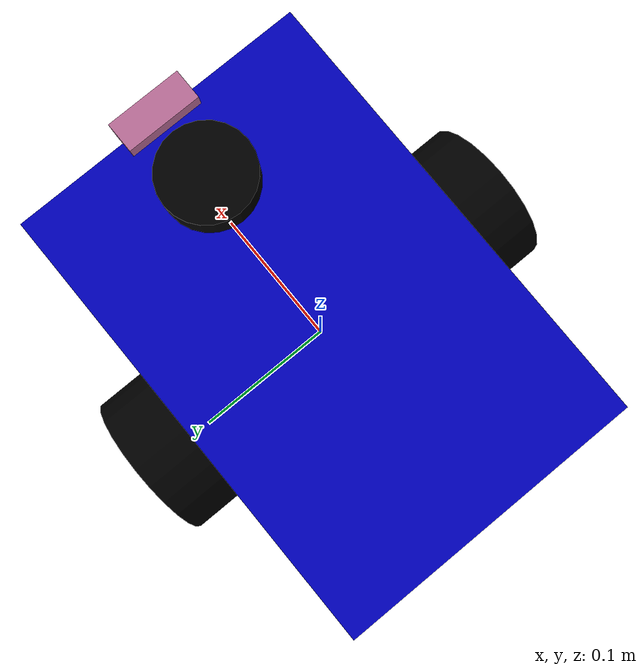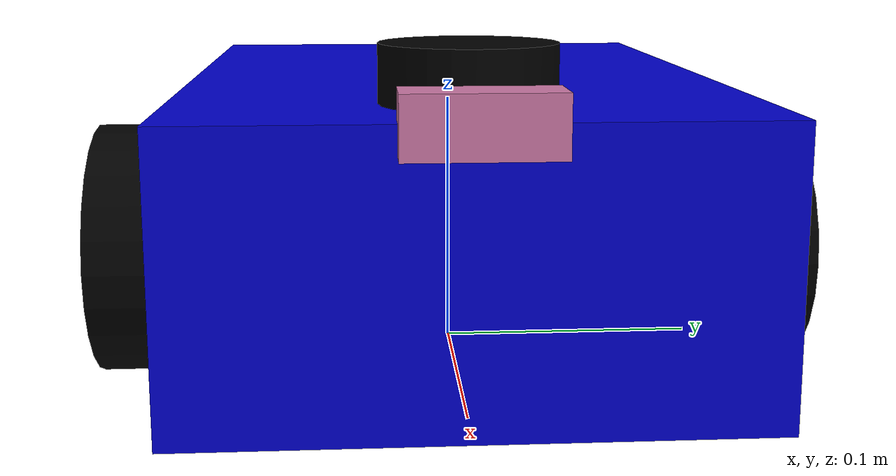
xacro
<?xml version="1.0"?>
<robot name="courier_robot" xmlns:xacro="http://www.ros.org/wiki/xacro">

  <material name="blue"><color rgba="0 0 0.8 1"/></material>
<material name="black"><color rgba="0 0 0 1"/></material>
<material name="white"><color rgba="1 1 1 1"/></material>

  <link name="base_link">
<visual>
<geometry><box size="0.3 0.2 0.1"/></geometry>
<material name="blue"/>
</visual>
<collision>
<geometry><box size="0.3 0.2 0.1"/></geometry>
</collision>
<inertial>
<mass value="2.0"/>
<inertia ixx="0.01" ixy="0" ixz="0" iyy="0.01" iyz="0" izz="0.01"/>
</inertial>
</link>

  <link name="base_footprint"/>
<joint name="base_joint" type="fixed">
<parent link="base_footprint"/>
<child link="base_link"/>
<origin xyz="0 0 0.06" rpy="0 0 0"/> </joint>

  <link name="left_wheel">
<visual>
<geometry><cylinder radius="0.05" length="0.04"/></geometry>
<material name="black"/>
</visual>
<collision>
<geometry><cylinder radius="0.05" length="0.04"/></geometry>
</collision>
<inertial>
<mass value="0.2"/>
<inertia ixx="0.0001" ixy="0" ixz="0" iyy="0.0001" iyz="0" izz="0.0001"/>
</inertial>
</link>
<joint name="left_wheel_joint" type="continuous">
<parent link="base_link"/>
<child link="left_wheel"/>
<origin xyz="0 0.12 -0.02" rpy="-1.5707 0 0"/>
<axis xyz="0 0 1"/>
</joint>

  <link name="right_wheel">
<visual>
<geometry><cylinder radius="0.05" length="0.04"/></geometry>
<material name="black"/>
</visual>
<collision>
<geometry><cylinder radius="0.05" length="0.04"/></geometry>
</collision>
<inertial>
<mass value="0.2"/>
<inertia ixx="0.0001" ixy="0" ixz="0" iyy="0.0001" iyz="0" izz="0.0001"/>
</inertial>
</link>
<joint name="right_wheel_joint" type="continuous">
<parent link="base_link"/>
<child link="right_wheel"/>
<origin xyz="0 -0.12 -0.02" rpy="-1.5707 0 0"/>
<axis xyz="0 0 1"/>
</joint>

  <link name="caster_wheel">
<visual><geometry><sphere radius="0.03"/></geometry></visual>
<collision><geometry><sphere radius="0.03"/></geometry></collision>
<inertial>
<mass value="0.1"/>
<inertia ixx="0.0001" ixy="0" ixz="0" iyy="0.0001" iyz="0" izz="0.0001"/>
</inertial>
</link>
<joint name="caster_joint" type="fixed">
<parent link="base_link"/>
<child link="caster_wheel"/>
<origin xyz="-0.1 0 -0.04" rpy="0 0 0"/>
<axis xyz="0 1 0"/>
</joint>

  <link name="lidar_link">
<visual><geometry><cylinder radius="0.03" length="0.02"/></geometry><material name="black"/></visual>
</link>
<joint name="lidar_joint" type="fixed">
<parent link="base_link"/>
<child link="lidar_link"/>
<origin xyz="0.10 0 0.06" rpy="0 0 0"/>
</joint>

  <gazebo reference="lidar_link">
<sensor name="lidar" type="gpu_lidar">
<pose>0 0 0 0 0 0</pose>
<always_on>true</always_on>
<visualize>true</visualize>
<update_rate>10</update_rate>
<ray>
<scan>
<horizontal>
<samples>360</samples>
<resolution>1</resolution>
<min_angle>-3.14</min_angle>
<max_angle>3.14</max_angle>
</horizontal>
</scan>
<range>
<min>0.15</min>
<max>6.0</max>
</range>
</ray>
</sensor>
</gazebo>

  <link name="camera_link">
<visual><geometry><box size="0.02 0.05 0.02"/></geometry></visual>
</link>
<joint name="camera_joint" type="fixed">
<parent link="base_link"/>
<child link="camera_link"/>
<origin xyz="0.15 0 0.05" rpy="0 0 0"/>
</joint>

  <gazebo reference="camera_link">
<sensor name="camera" type="camera">
<camera>
<horizontal_fov>1.047</horizontal_fov>
<image>
<width>640</width>
<height>480</height>
</image>
<clip>
<near>0.1</near>
<far>100</far>
</clip>
</camera>
<always_on>1</always_on>
<update_rate>30</update_rate>
<visualize>true</visualize>
</sensor>
</gazebo>

  <gazebo>
<plugin filename="libgz-sim-diff-drive-system.so" name="gz::sim::systems::DiffDrive">
<left_joint>left_wheel_joint</left_joint>
<right_joint>right_wheel_joint</right_joint>
<wheel_separation>0.24</wheel_separation>
<wheel_radius>0.05</wheel_radius>
<odom_publish_frequency>20</odom_publish_frequency>
<topic>cmd_vel</topic>
<odom_topic>odom</odom_topic>
<frame_id>odom</frame_id>
<child_frame_id>base_footprint</child_frame_id>
</plugin>

    <plugin filename="libgz-sim-sensors-system.so" name="gz::sim::systems::Sensors">
<render_engine>ogre2</render_engine>
</plugin>
</gazebo>

</robot>
